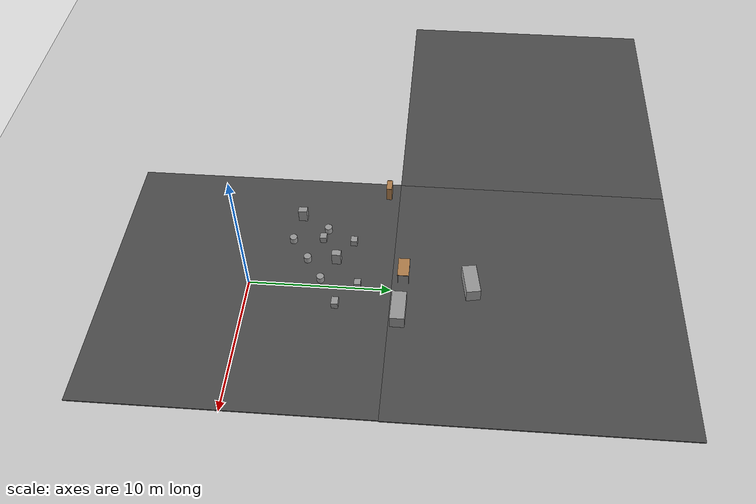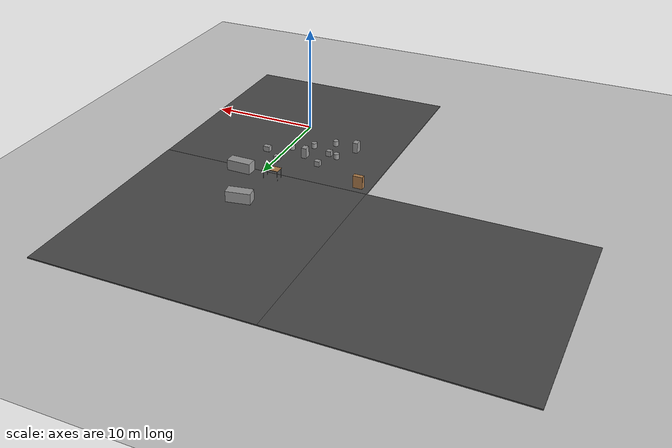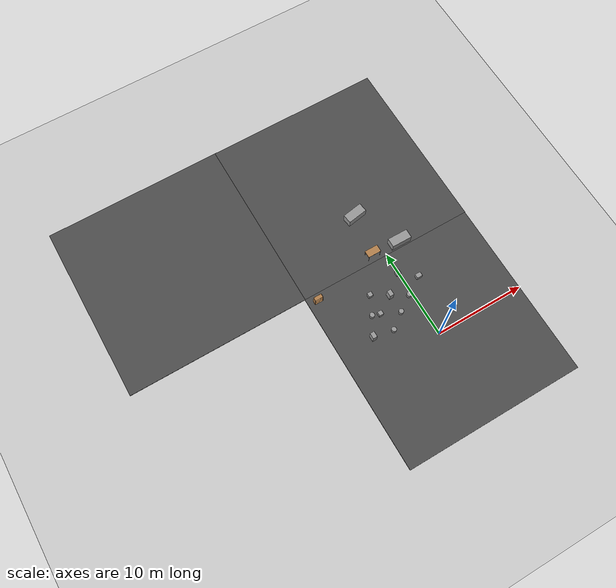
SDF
<sdf version="1.7">
 <world name="default">
  <model name="ground_plane">
   <static>1</static>
   <link name="link">
    <collision name="collision">
     <geometry><plane><normal>0 0 1</normal><size>100 100</size></plane></geometry>
     <surface>
      <contact><collide_bitmask>65535</collide_bitmask></contact>
      <friction><ode><mu>100</mu><mu2>50</mu2></ode></friction>
     </surface>
    </collision>
    <visual name="visual">
     <cast_shadows>0</cast_shadows>
     <geometry><plane><normal>0 0 1</normal><size>100 100</size></plane></geometry>
     <material>
      <script><uri>file://media/materials/scripts/gazebo.material</uri><name>Gazebo/Grey</name></script>
     </material>
    </visual>
   </link>
  </model>
  <model name="asphalt_plane">
   <static>1</static>
   <link name="link">
    <collision name="collision"><geometry><box><size>20 20 0.1</size></box></geometry></collision>
    <visual name="visual">
     <cast_shadows>0</cast_shadows>
     <geometry><box><size>20 20 0.1</size></box></geometry>
     <material>
      <script>
       <uri>model://asphalt_plane/materials/scripts</uri>
       <uri>model://asphalt_plane/materials/textures</uri>
       <name>vrc/asphalt</name>
      </script>
     </material>
    </visual>
   </link>
   <pose>-0.033327 0.054034 0 0 -0 0</pose>
  </model>
  <model name="asphalt_plane_clone_4">
   <static>1</static>
   <link name="link">
    <collision name="collision"><geometry><box><size>20 20 0.1</size></box></geometry></collision>
    <visual name="visual">
     <cast_shadows>0</cast_shadows>
     <geometry><box><size>20 20 0.1</size></box></geometry>
     <material>
      <script>
       <uri>model://asphalt_plane/materials/scripts</uri>
       <uri>model://asphalt_plane/materials/textures</uri>
       <name>vrc/asphalt</name>
      </script>
     </material>
    </visual>
   </link>
   <pose>-20 20 0 0 -0 0</pose>
  </model>
  <model name="asphalt_plane_clone_5">
   <static>1</static>
   <link name="link">
    <collision name="collision"><geometry><box><size>20 20 0.1</size></box></geometry></collision>
    <visual name="visual">
     <cast_shadows>0</cast_shadows>
     <geometry><box><size>20 20 0.1</size></box></geometry>
     <material>
      <script>
       <uri>model://asphalt_plane/materials/scripts</uri>
       <uri>model://asphalt_plane/materials/textures</uri>
       <name>vrc/asphalt</name>
      </script>
     </material>
    </visual>
   </link>
   <pose>0 20 0 0 -0 0</pose>
  </model>
  <model name="unit_box_0_clone_0">
   <pose>1.49943 6.26197 0.301354 7e-06 -0 1e-06</pose>
   <link name="link">
    <inertial>
     <mass>1</mass>
     <inertia>
      <ixx>0.166667</ixx>
      <ixy>0</ixy>
      <ixz>0</ixz>
      <iyy>0.166667</iyy>
      <iyz>0</iyz>
      <izz>0.166667</izz>
     </inertia>
    </inertial>
    <collision name="collision">
     <geometry><box><size>0.622689 0.467832 0.502712</size></box></geometry>
    </collision>
    <visual name="visual">
     <geometry><box><size>0.622689 0.467832 0.502712</size></box></geometry>
     <material>
      <script><name>Gazebo/Grey</name><uri>file://media/materials/scripts/gazebo.material</uri></script>
     </material>
    </visual>
   </link>
  </model>
  <model name="unit_cylinder">
   <pose>-3.88535 2.58839 0.294834 -3e-06 5e-06 0.000642</pose>
   <link name="link">
    <inertial>
     <mass>1</mass>
     <inertia><ixx>0.145833</ixx><ixy>0</ixy><ixz>0</ixz><iyy>0.145833</iyy><iyz>0</iyz><izz>0.125</izz></inertia>
    </inertial>
    <collision name="collision">
     <geometry><cylinder><radius>0.264047</radius><length>0.48967</length></cylinder></geometry>
    </collision>
    <visual name="visual">
     <geometry><cylinder><radius>0.264047</radius><length>0.48967</length></cylinder></geometry>
     <material>
      <script><name>Gazebo/Grey</name><uri>file://media/materials/scripts/gazebo.material</uri></script>
     </material>
    </visual>
   </link>
  </model>
  <model name="unit_cylinder_clone_2">
   <pose>-2.20476 3.85765 0.294835 0 -0 0.000415</pose>
   <link name="link">
    <inertial>
     <mass>1</mass>
     <inertia><ixx>0.145833</ixx><ixy>0</ixy><ixz>0</ixz><iyy>0.145833</iyy><iyz>0</iyz><izz>0.125</izz></inertia>
    </inertial>
    <collision name="collision">
     <geometry><cylinder><radius>0.264047</radius><length>0.48967</length></cylinder></geometry>
    </collision>
    <visual name="visual">
     <geometry><cylinder><radius>0.264047</radius><length>0.48967</length></cylinder></geometry>
     <material>
      <script><name>Gazebo/Grey</name><uri>file://media/materials/scripts/gazebo.material</uri></script>
     </material>
    </visual>
   </link>
  </model>
  <model name="unit_cylinder_clone_3">
   <pose>-0.494247 5 0.294836 4e-06 -1e-06 0.0004</pose>
   <link name="link">
    <inertial>
     <mass>1</mass>
     <inertia><ixx>0.145833</ixx><ixy>0</ixy><ixz>0</ixz><iyy>0.145833</iyy><iyz>0</iyz><izz>0.125</izz></inertia>
    </inertial>
    <collision name="collision">
     <geometry><cylinder><radius>0.264047</radius><length>0.48967</length></cylinder></geometry>
    </collision>
    <visual name="visual">
     <geometry><cylinder><radius>0.264047</radius><length>0.48967</length></cylinder></geometry>
     <material>
      <script><name>Gazebo/Grey</name><uri>file://media/materials/scripts/gazebo.material</uri></script>
     </material>
    </visual>
   </link>
  </model>
  <model name="unit_cylinder_clone_14">
   <pose>-4.99999 5 0.294837 -9e-06 -0 0.000429</pose>
   <link name="link">
    <inertial>
     <mass>1</mass>
     <inertia><ixx>0.145833</ixx><ixy>0</ixy><ixz>0</ixz><iyy>0.145833</iyy><iyz>0</iyz><izz>0.125</izz></inertia>
    </inertial>
    <collision name="collision">
     <geometry><cylinder><radius>0.264047</radius><length>0.48967</length></cylinder></geometry>
    </collision>
    <visual name="visual">
     <geometry><cylinder><radius>0.264047</radius><length>0.48967</length></cylinder></geometry>
     <material>
      <script><name>Gazebo/Grey</name><uri>file://media/materials/scripts/gazebo.material</uri></script>
     </material>
    </visual>
   </link>
  </model>
  <model name="unit_box_0_clone_1_clone">
   <pose>-4.15621 4.74188 0.301356 0 -0 1e-06</pose>
   <link name="link">
    <inertial>
     <mass>1</mass>
     <inertia>
      <ixx>0.166667</ixx>
      <ixy>0</ixy>
      <ixz>0</ixz>
      <iyy>0.166667</iyy>
      <iyz>0</iyz>
      <izz>0.166667</izz>
     </inertia>
    </inertial>
    <collision name="collision">
     <geometry><box><size>0.495294 0.467832 0.502712</size></box></geometry>
    </collision>
    <visual name="visual">
     <geometry><box><size>0.495294 0.467832 0.502712</size></box></geometry>
     <material>
      <script><name>Gazebo/Grey</name><uri>file://media/materials/scripts/gazebo.material</uri></script>
     </material>
    </visual>
   </link>
  </model>
  <model name="unit_box_0_clone_1_clone_0">
   <pose>-4 7 0.301356 0 -0 1e-06</pose>
   <link name="link">
    <inertial>
     <mass>1</mass>
     <inertia>
      <ixx>0.166667</ixx>
      <ixy>0</ixy>
      <ixz>0</ixz>
      <iyy>0.166667</iyy>
      <iyz>0</iyz>
      <izz>0.166667</izz>
     </inertia>
    </inertial>
    <collision name="collision">
     <geometry><box><size>0.495294 0.467832 0.502712</size></box></geometry>
    </collision>
    <visual name="visual">
     <geometry><box><size>0.495294 0.467832 0.502712</size></box></geometry>
     <material>
      <script><name>Gazebo/Grey</name><uri>file://media/materials/scripts/gazebo.material</uri></script>
     </material>
    </visual>
   </link>
  </model>
  <model name="unit_box_0_clone_1_clone_1">
   <pose>-0.198532 7.63401 0.301356 0 -0 1e-06</pose>
   <link name="link">
    <inertial>
     <mass>1</mass>
     <inertia>
      <ixx>0.166667</ixx>
      <ixy>0</ixy>
      <ixz>0</ixz>
      <iyy>0.166667</iyy>
      <iyz>0</iyz>
      <izz>0.166667</izz>
     </inertia>
    </inertial>
    <collision name="collision">
     <geometry><box><size>0.495294 0.467832 0.502712</size></box></geometry>
    </collision>
    <visual name="visual">
     <geometry><box><size>0.495294 0.467832 0.502712</size></box></geometry>
     <material>
      <script><name>Gazebo/Grey</name><uri>file://media/materials/scripts/gazebo.material</uri></script>
     </material>
    </visual>
   </link>
  </model>
  <model name="unit_box_3_clone">
   <pose>-2.24652 5.9397 0.55 0 -0 0</pose>
   <link name="link">
    <inertial>
     <mass>1</mass>
     <inertia>
      <ixx>0.166667</ixx>
      <ixy>0</ixy>
      <ixz>0</ixz>
      <iyy>0.166667</iyy>
      <iyz>0</iyz>
      <izz>0.166667</izz>
     </inertia>
    </inertial>
    <collision name="collision"><geometry><box><size>0.473217 0.637104 1</size></box></geometry></collision>
    <visual name="visual">
     <geometry><box><size>0.473217 0.637104 1</size></box></geometry>
     <material>
      <script><name>Gazebo/Grey</name><uri>file://media/materials/scripts/gazebo.material</uri></script>
     </material>
    </visual>
   </link>
  </model>
  <model name="unit_box_3_clone_2">
   <pose>-6.12917 2.98269 0.55 0 -0 0</pose>
   <link name="link">
    <inertial>
     <mass>1</mass>
     <inertia>
      <ixx>0.166667</ixx>
      <ixy>0</ixy>
      <ixz>0</ixz>
      <iyy>0.166667</iyy>
      <iyz>0</iyz>
      <izz>0.166667</izz>
     </inertia>
    </inertial>
    <collision name="collision"><geometry><box><size>0.473217 0.637104 1</size></box></geometry></collision>
    <visual name="visual">
     <geometry><box><size>0.473217 0.637104 1</size></box></geometry>
     <material>
      <script><name>Gazebo/Grey</name><uri>file://media/materials/scripts/gazebo.material</uri></script>
     </material>
    </visual>
   </link>
  </model>
  <model name="unit_box_5">
   <pose>1.90339 10.6366 0.549967 0 -2.9e-05 -0.008907</pose>
   <link name="link">
    <inertial>
     <mass>1</mass>
     <inertia>
      <ixx>0.166667</ixx>
      <ixy>0</ixy>
      <ixz>0</ixz>
      <iyy>0.166667</iyy>
      <iyz>0</iyz>
      <izz>0.166667</izz>
     </inertia>
    </inertial>
    <collision name="collision"><geometry><box><size>2.25366 1 1</size></box></geometry></collision>
    <visual name="visual">
     <geometry><box><size>2.25366 1 1</size></box></geometry>
     <material>
      <script><name>Gazebo/Grey</name><uri>file://media/materials/scripts/gazebo.material</uri></script>
     </material>
    </visual>
   </link>
  </model>
  <model name="unit_box_5_clone">
   <pose>-0.647038 15.5081 0.55 0 -0 0.169474</pose>
   <link name="link">
    <inertial>
     <mass>1</mass>
     <inertia>
      <ixx>0.166667</ixx>
      <ixy>0</ixy>
      <ixz>0</ixz>
      <iyy>0.166667</iyy>
      <iyz>0</iyz>
      <izz>0.166667</izz>
     </inertia>
    </inertial>
    <collision name="collision"><geometry><box><size>2.25366 1 1</size></box></geometry></collision>
    <visual name="visual">
     <geometry><box><size>2.25366 1 1</size></box></geometry>
     <material>
      <script><name>Gazebo/Grey</name><uri>file://media/materials/scripts/gazebo.material</uri></script>
     </material>
    </visual>
   </link>
  </model>
  <model name="table">
   <static>1</static>
   <link name="link">
    <collision name="surface">
     <pose>0 0 1 0 -0 0</pose>
     <geometry><box><size>1.5 0.8 0.03</size></box></geometry>
     <surface><friction><ode><mu>0.6</mu><mu2>0.6</mu2></ode></friction></surface>
    </collision>
    <visual name="visual1">
     <pose>0 0 1 0 -0 0</pose>
     <geometry><box><size>1.5 0.8 0.03</size></box></geometry>
     <material>
      <script><uri>file://media/materials/scripts/gazebo.material</uri><name>Gazebo/Wood</name></script>
     </material>
    </visual>
    <collision name="front_left_leg">
     <pose>0.68 0.38 0.5 0 -0 0</pose>
     <geometry><cylinder><radius>0.02</radius><length>1</length></cylinder></geometry>
    </collision>
    <visual name="front_left_leg">
     <pose>0.68 0.38 0.5 0 -0 0</pose>
     <geometry><cylinder><radius>0.02</radius><length>1</length></cylinder></geometry>
     <material>
      <script><uri>file://media/materials/scripts/gazebo.material</uri><name>Gazebo/Grey</name></script>
     </material>
    </visual>
    <collision name="front_right_leg">
     <pose>0.68 -0.38 0.5 0 -0 0</pose>
     <geometry><cylinder><radius>0.02</radius><length>1</length></cylinder></geometry>
    </collision>
    <visual name="front_right_leg">
     <pose>0.68 -0.38 0.5 0 -0 0</pose>
     <geometry><cylinder><radius>0.02</radius><length>1</length></cylinder></geometry>
     <material>
      <script><uri>file://media/materials/scripts/gazebo.material</uri><name>Gazebo/Grey</name></script>
     </material>
    </visual>
    <collision name="back_right_leg">
     <pose>-0.68 -0.38 0.5 0 -0 0</pose>
     <geometry><cylinder><radius>0.02</radius><length>1</length></cylinder></geometry>
    </collision>
    <visual name="back_right_leg">
     <pose>-0.68 -0.38 0.5 0 -0 0</pose>
     <geometry><cylinder><radius>0.02</radius><length>1</length></cylinder></geometry>
     <material>
      <script><uri>file://media/materials/scripts/gazebo.material</uri><name>Gazebo/Grey</name></script>
     </material>
    </visual>
    <collision name="back_left_leg">
     <pose>-0.68 0.38 0.5 0 -0 0</pose>
     <geometry><cylinder><radius>0.02</radius><length>1</length></cylinder></geometry>
    </collision>
    <visual name="back_left_leg">
     <pose>-0.68 0.38 0.5 0 -0 0</pose>
     <geometry><cylinder><radius>0.02</radius><length>1</length></cylinder></geometry>
     <material>
      <script><uri>file://media/materials/scripts/gazebo.material</uri><name>Gazebo/Grey</name></script>
     </material>
    </visual>
   </link>
   <pose>-1.33434 10.7891 0 0 -0 0</pose>
  </model>
  <model name="bookshelf">
   <static>1</static>
   <link name="link">
    <inertial><mass>1</mass></inertial>
    <collision name="back">
     <pose>0 0.005 0.6 0 -0 0</pose>
     <geometry><box><size>0.9 0.01 1.2</size></box></geometry>
    </collision>
    <visual name="visual1">
     <pose>0 0.005 0.6 0 -0 0</pose>
     <geometry><box><size>0.9 0.01 1.2</size></box></geometry>
     <material>
      <script><uri>file://media/materials/scripts/gazebo.material</uri><name>Gazebo/Wood</name></script>
     </material>
    </visual>
    <collision name="left_side">
     <pose>0.45 -0.195 0.6 0 -0 0</pose>
     <geometry><box><size>0.02 0.4 1.2</size></box></geometry>
    </collision>
    <visual name="visual2">
     <pose>0.45 -0.195 0.6 0 -0 0</pose>
     <geometry><box><size>0.02 0.4 1.2</size></box></geometry>
     <material>
      <script><uri>file://media/materials/scripts/gazebo.material</uri><name>Gazebo/Wood</name></script>
     </material>
    </visual>
    <collision name="right_side">
     <pose>-0.45 -0.195 0.6 0 -0 0</pose>
     <geometry><box><size>0.02 0.4 1.2</size></box></geometry>
    </collision>
    <visual name="visual3">
     <pose>-0.45 -0.195 0.6 0 -0 0</pose>
     <geometry><box><size>0.02 0.4 1.2</size></box></geometry>
     <material>
      <script><uri>file://media/materials/scripts/gazebo.material</uri><name>Gazebo/Wood</name></script>
     </material>
    </visual>
    <collision name="bottom">
     <pose>0 -0.195 0.03 0 -0 0</pose>
     <geometry><box><size>0.88 0.4 0.06</size></box></geometry>
    </collision>
    <visual name="visual4">
     <pose>0 -0.195 0.03 0 -0 0</pose>
     <geometry><box><size>0.88 0.4 0.06</size></box></geometry>
     <material>
      <script><uri>file://media/materials/scripts/gazebo.material</uri><name>Gazebo/Wood</name></script>
     </material>
    </visual>
    <collision name="top">
     <pose>0 -0.195 1.19 0 -0 0</pose>
     <geometry><box><size>0.88 0.4 0.02</size></box></geometry>
    </collision>
    <visual name="visual5">
     <pose>0 -0.195 1.19 0 -0 0</pose>
     <geometry><box><size>0.88 0.4 0.02</size></box></geometry>
     <material>
      <script><uri>file://media/materials/scripts/gazebo.material</uri><name>Gazebo/Wood</name></script>
     </material>
    </visual>
    <collision name="low_shelf">
     <pose>0 -0.195 0.43 0 -0 0</pose>
     <geometry><box><size>0.88 0.4 0.02</size></box></geometry>
    </collision>
    <visual name="visual6">
     <pose>0 -0.195 0.43 0 -0 0</pose>
     <geometry><box><size>0.88 0.4 0.02</size></box></geometry>
     <material>
      <script><uri>file://media/materials/scripts/gazebo.material</uri><name>Gazebo/Wood</name></script>
     </material>
    </visual>
    <collision name="high_shelf">
     <pose>0 -0.195 0.8 0 -0 0</pose>
     <geometry><box><size>0.88 0.4 0.02</size></box></geometry>
    </collision>
    <visual name="visual7">
     <pose>0 -0.195 0.8 0 -0 0</pose>
     <geometry><box><size>0.88 0.4 0.02</size></box></geometry>
     <material>
      <script><uri>file://media/materials/scripts/gazebo.material</uri><name>Gazebo/Wood</name></script>
     </material>
    </visual>
   </link>
   <pose>-8.92467 9.3831 0 0 -0 0</pose>
  </model>
 </world>
</sdf>
